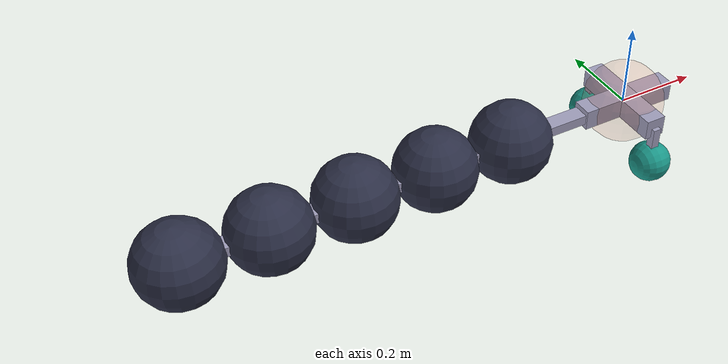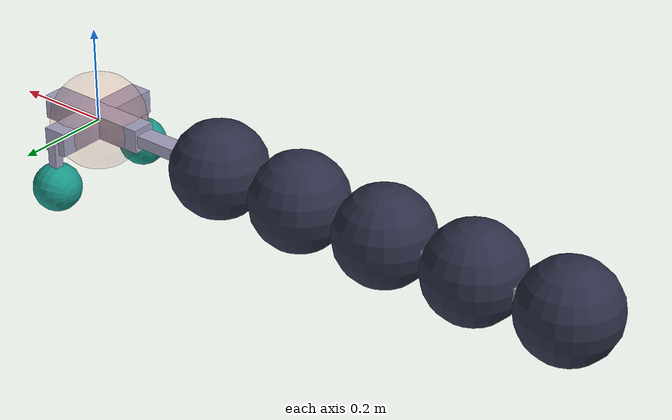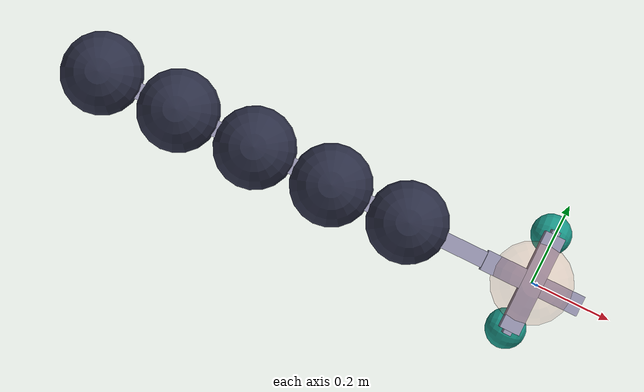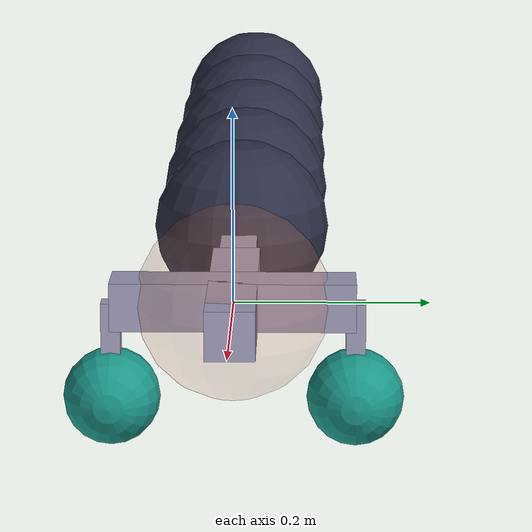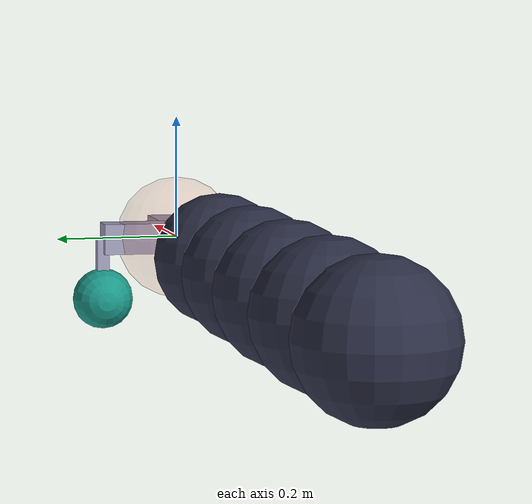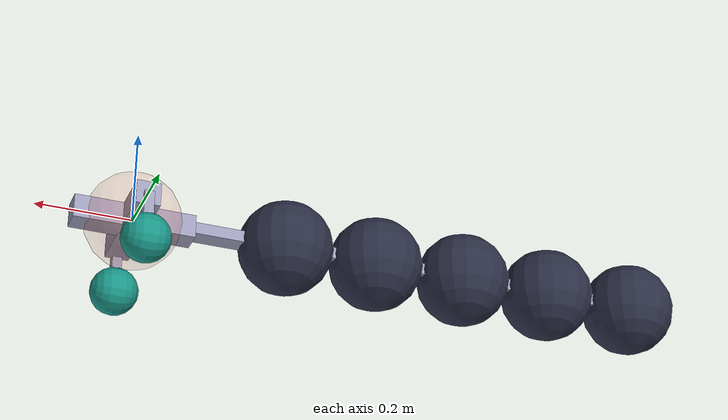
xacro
<?xml version="1.0"?>
<robot xmlns:xacro="http://www.ros.org/wiki/xacro" name="crawler">

  <!--
        To generate the correct .URDF from this XACRO file see https://answers.ros.org/question/10401/how-to-convert-xacro-file-to-urdf-file/
  -->

  <!--CONSTANTS-->
  <xacro:property name="PI" value="3.14159" />

  <xacro:property name="BODY_LENGTH" value="1"/>
  <xacro:property name="BODY_MASS" value="1"/>

  <!-- NOTE: The numbers of spine segments, for now, must be matched manually to the number of macro called to add the spine segments-->
  <xacro:property name="SPINE_SEGMENTS_NUMBER" value="5" />

  <xacro:property name="SPINE_SEGMENT_LENGTH" value="${BODY_LENGTH/SPINE_SEGMENTS_NUMBER}" />
  <xacro:property name="SPINE_DORSAL_BENDING_LIMIT" value="${PI/8}" />
  <xacro:property name="SPINE_LATERAL_BENDING_LIMIT" value="${PI/4}" />

  <xacro:property name="BODY_SPHERE_MASS" value="${BODY_MASS/(SPINE_SEGMENTS_NUMBER+3)}" /><!-- +3 for the head and girdle masses-->
  <xacro:property name="BODY_SPHERE_RADIUS" value="${BODY_LENGTH/10}" />
  <xacro:property name="BODY_SPHERE_INERTIA" value="${2*BODY_SPHERE_MASS*BODY_SPHERE_RADIUS*BODY_SPHERE_RADIUS/5}" />

  <xacro:property name="GIRDLE_WIDTH" value="${BODY_LENGTH/8}" />
  <xacro:property name="GIRDLE_LENGTH" value="${BODY_LENGTH/8}" />

  <xacro:property name="LEG_LENGTH" value="${BODY_LENGTH/10}" />
  <xacro:property name="LEG_TIP_MASS" value="${BODY_MASS/20}" />
  <xacro:property name="LEG_TIP_RADIUS" value="${BODY_LENGTH/20}" />
  <xacro:property name="LEG_TIP_INERTIA" value="${2*LEG_TIP_MASS*LEG_TIP_RADIUS*LEG_TIP_RADIUS/5}" />

  <xacro:property name="GIRDLE_FLEXION_LIMIT" value="${PI/2}" />
  <xacro:property name="GIRDLE_EXTENSION_LIMIT" value="${PI/6}" />

  <xacro:property name="GIRDLE_ABDUCTION_LIMIT" value="${PI/2}" />
  <xacro:property name="GIRDLE_ADDUCTION_LIMIT" value="${PI/2}" />

  <xacro:property name="JOINT_DAMPING" value="0.01" />
  <xacro:property name="JOINT_FRICTION" value="0.01" />

  <xacro:property name="VISUAL_BOX_RATIO" value="0.2" />

<!--########### COLORS used for the links ###########-->
<!--colors are currently implemented as macro because just defining them, as shown in the ROS tutorial, seems not to work-->
  <xacro:macro name="girdle_material">
    <material name="girdle_material">
      <color rgba="0.878 0.471 0.333 0.1"/>
    </material>
  </xacro:macro>

  <xacro:macro name="body_material">
    <material name="body_material">
      <color rgba="0.176 0.188 0.278 1.0"/>
    </material>
  </xacro:macro>

  <xacro:macro name="leg_material">
    <material name="leg_material">
      <color rgba="0.106 0.6 0.545 1.0"/>
    </material>
  </xacro:macro>

  <xacro:macro name="visual_box_material">
    <material name="visual_box_material">
      <color rgba="0.627 0.620 0.733 1.0"/>
    </material>
  </xacro:macro>

<!--########### MACRO for links and joints ###########-->

  <xacro:macro name="spine_segment_macro" params="N">
    <link name="spine_connection_${N}">
      <inertial>
      <origin xyz="0 0 0" rpy="0 0 0"/>
        <mass value="${BODY_SPHERE_MASS/100}"/>
        <inertia ixx="${BODY_SPHERE_INERTIA/100}"  ixy="0"  ixz="0" iyy="${BODY_SPHERE_INERTIA/100}" iyz="0" izz="${BODY_SPHERE_INERTIA/100}" />
      </inertial>
    </link>
    <link name="spine_link_${N}">
      <inertial>
      <origin xyz="${-SPINE_SEGMENT_LENGTH} 0 0" rpy="0 0 0"/>
        <mass value="${BODY_SPHERE_MASS}"/>
        <inertia ixx="${BODY_SPHERE_INERTIA}"  ixy="0"  ixz="0" iyy="${BODY_SPHERE_INERTIA}" iyz="0" izz="${BODY_SPHERE_INERTIA}" />
      </inertial>
      <visual>
        <origin xyz="${-SPINE_SEGMENT_LENGTH} 0 0" rpy="0 0 0"/>
        <geometry>
          <sphere radius="${BODY_SPHERE_RADIUS}" />
        </geometry>
        <xacro:body_material/>
      </visual>
      <visual>
        <origin xyz="${-SPINE_SEGMENT_LENGTH/2} 0 0" rpy="0 0 0"/>
        <geometry>
          <box size="${SPINE_SEGMENT_LENGTH} ${VISUAL_BOX_RATIO*SPINE_SEGMENT_LENGTH} ${VISUAL_BOX_RATIO*GIRDLE_WIDTH}"/>
        </geometry>
        <xacro:visual_box_material/>
      </visual>
      <collision>
        <origin xyz="${-SPINE_SEGMENT_LENGTH} 0 0" rpy="0 0 0"/>
        <geometry>
          <sphere radius="${BODY_SPHERE_RADIUS}" />
        </geometry>
      </collision>
    </link>
    <joint name="spine_dorsal_joint_${N}" type="revolute">
      <origin xyz="${-SPINE_SEGMENT_LENGTH} 0 0" rpy="${-PI/2} 0 0"/>
      <axis xyz="0 0 1"/>
      <parent link="spine_link_${N-1}"/>
      <child link="spine_connection_${N}"/>
      <dynamics damping="${JOINT_DAMPING}" friction="${JOINT_FRICTION}"/>
      <limit effort="30" velocity="1.0" lower="-${SPINE_DORSAL_BENDING_LIMIT}" upper="${SPINE_DORSAL_BENDING_LIMIT}" />
    </joint>
    <joint name="spine_lateral_joint_${N}" type="revolute">
      <origin xyz="0 0 0" rpy="${PI/2} 0 0"/>
      <axis xyz="0 0 1"/>
      <parent link="spine_connection_${N}"/>
      <child link="spine_link_${N}"/>
      <dynamics damping="${JOINT_DAMPING}" friction="${JOINT_FRICTION}"/>
      <limit effort="30" velocity="1.0" lower="-${SPINE_LATERAL_BENDING_LIMIT}" upper="${SPINE_LATERAL_BENDING_LIMIT}" />
    </joint>
  </xacro:macro>

  <xacro:macro name="leg_macro" params="prefix reflect">
    <link name="${prefix}_girdle_connection_1">
      <inertial>
        <origin xyz="0 0 0" rpy="0 0 0"/>
        <mass value="0.01"/>
        <inertia ixx="0.001"  ixy="0"  ixz="0" iyy="0.001" iyz="0" izz="0.001" />
      </inertial>
    </link>
    <joint name="${prefix}_girdle_flection_joint" type="revolute">
      <origin xyz="0 ${-reflect*GIRDLE_WIDTH} 0" rpy="0 ${PI/2} ${-reflect*PI/2}"/>
      <axis xyz="0 0 1"/>
      <parent link="girdle"/>
      <child link="${prefix}_girdle_connection_1"/>
      <dynamics damping="${JOINT_DAMPING}" friction="${JOINT_FRICTION}"/>
      <limit effort="30" velocity="1.0" lower="-${GIRDLE_EXTENSION_LIMIT}" upper="${GIRDLE_FLEXION_LIMIT}" />
    </joint>
    <link name="${prefix}_leg">
      <inertial>
      <origin xyz="${LEG_LENGTH} 0 0" rpy="0 0 0"/>
        <mass value="${LEG_TIP_MASS}"/>
        <inertia ixx="${LEG_TIP_INERTIA}"  ixy="0"  ixz="0" iyy="${LEG_TIP_INERTIA}" iyz="0" izz="${LEG_TIP_INERTIA}" />
      </inertial>
      <visual>
        <origin xyz="${LEG_LENGTH} 0 0" rpy="0 0 0"/>
        <geometry>
          <sphere radius="${LEG_TIP_RADIUS}" />
        </geometry>
        <xacro:leg_material/>
      </visual>
      <visual>
        <origin xyz="${LEG_LENGTH/2} 0 0" rpy="0 0 0"/>
        <geometry>
          <box size="${LEG_LENGTH} ${VISUAL_BOX_RATIO*LEG_LENGTH} ${VISUAL_BOX_RATIO*LEG_LENGTH}" />
        </geometry>
        <xacro:visual_box_material/>
      </visual>
      <collision>
        <origin xyz="${LEG_LENGTH} 0 0" rpy="0 0 0"/>
        <geometry>
          <sphere radius="${LEG_TIP_RADIUS}" />
        </geometry>
      </collision>
    </link>
    <joint name="${prefix}_girdle_abduction_joint" type="revolute">
      <origin xyz="0 0 0" rpy="${reflect*PI/2} 0 0"/>
      <axis xyz="0 0 1"/>
      <parent link="${prefix}_girdle_connection_1"/>
      <child link="${prefix}_leg"/>
      <dynamics damping="${JOINT_DAMPING}" friction="${JOINT_FRICTION}"/>
      <limit effort="30" velocity="1.0" lower="-${GIRDLE_ADDUCTION_LIMIT}" upper="${GIRDLE_ABDUCTION_LIMIT}" />
    </joint>
  </xacro:macro>

<!-- ########### MODEL LINKS AND JOINTS ########### -->
  <link name="girdle">
   <inertial>
     <origin xyz="0 0 0" rpy="0 0 0"/>
     <mass value="${BODY_SPHERE_MASS}"/>
     <inertia ixx="${BODY_SPHERE_INERTIA}"  ixy="0"  ixz="0" iyy="${BODY_SPHERE_INERTIA}" iyz="0" izz="${BODY_SPHERE_INERTIA}" />
   </inertial>
   <visual>
     <origin xyz="0 0 0" rpy="0 0 0"/>
     <geometry>
       <sphere radius="${BODY_SPHERE_RADIUS}" />
     </geometry>
     <xacro:girdle_material/>
   </visual>
   <visual>
     <origin xyz="0 0 0" rpy="0 0 0"/>
     <geometry>
       <box size="${VISUAL_BOX_RATIO*2*GIRDLE_WIDTH} ${2*GIRDLE_WIDTH} ${VISUAL_BOX_RATIO*2*GIRDLE_WIDTH}"/>
     </geometry>
     <xacro:visual_box_material/>
   </visual>
   <visual>
     <origin xyz="0 0 0" rpy="0 0 0"/>
     <geometry>
       <box size="${2*GIRDLE_LENGTH} ${VISUAL_BOX_RATIO*2*GIRDLE_LENGTH} ${VISUAL_BOX_RATIO*2*GIRDLE_WIDTH}"/>
     </geometry>
     <xacro:visual_box_material/>
   </visual>
   <collision>
     <origin xyz="0 0 0" rpy="0 0 0"/>
     <geometry>
       <sphere radius="${BODY_SPHERE_RADIUS}" />
     </geometry>
   </collision>
 </link>

  <link name="spine_connection_1">
      <inertial>
      <origin xyz="0 0 0" rpy="0 0 0"/>
        <mass value="${BODY_SPHERE_MASS/100}"/>
        <inertia ixx="${BODY_SPHERE_INERTIA/100}"  ixy="0"  ixz="0" iyy="${BODY_SPHERE_INERTIA/100}" iyz="0" izz="${BODY_SPHERE_INERTIA/100}" />
      </inertial>
    </link>
    <link name="spine_link_1">
      <inertial>
      <origin xyz="${-SPINE_SEGMENT_LENGTH} 0 0" rpy="0 0 0"/>
        <mass value="${BODY_SPHERE_MASS}"/>
        <inertia ixx="${BODY_SPHERE_INERTIA}"  ixy="0"  ixz="0" iyy="${BODY_SPHERE_INERTIA}" iyz="0" izz="${BODY_SPHERE_INERTIA}" />
      </inertial>
      <visual>
        <origin xyz="${-SPINE_SEGMENT_LENGTH} 0 0" rpy="0 0 0"/>
        <geometry>
          <sphere radius="${BODY_SPHERE_RADIUS}" />
        </geometry>
        <xacro:body_material/>
      </visual>
      <visual>
        <origin xyz="${-SPINE_SEGMENT_LENGTH/2} 0 0" rpy="0 0 0"/>
        <geometry>
          <box size="${SPINE_SEGMENT_LENGTH} ${VISUAL_BOX_RATIO*SPINE_SEGMENT_LENGTH} ${VISUAL_BOX_RATIO*GIRDLE_WIDTH}"/>
        </geometry>
        <xacro:visual_box_material/>
      </visual>
      <collision>
        <origin xyz="${-SPINE_SEGMENT_LENGTH} 0 0" rpy="0 0 0"/>
        <geometry>
          <sphere radius="${BODY_SPHERE_RADIUS}" />
        </geometry>
      </collision>
    </link>
    <joint name="spine_dorsal_joint_1" type="revolute">
      <origin xyz="${-GIRDLE_LENGTH} 0 0" rpy="${-PI/2} 0 0"/>
      <axis xyz="0 0 1"/>
      <parent link="girdle"/>
      <child link="spine_connection_1"/>
      <dynamics damping="${JOINT_DAMPING}" friction="${JOINT_FRICTION}"/>
      <limit effort="30" velocity="1.0" lower="-${SPINE_DORSAL_BENDING_LIMIT}" upper="${SPINE_DORSAL_BENDING_LIMIT}" />
    </joint>
    <joint name="spine_lateral_joint_1" type="revolute">
      <origin xyz="0 0 0" rpy="${PI/2} 0 0"/>
      <axis xyz="0 0 1"/>
      <parent link="spine_connection_1"/>
      <child link="spine_link_1"/>
      <dynamics damping="${JOINT_DAMPING}" friction="${JOINT_FRICTION}"/>
      <limit effort="30" velocity="1.0" lower="-${SPINE_LATERAL_BENDING_LIMIT}" upper="${SPINE_LATERAL_BENDING_LIMIT}" />
    </joint>

  <xacro:spine_segment_macro N="2"/>
  <xacro:spine_segment_macro N="3"/>
  <xacro:spine_segment_macro N="4"/>
  <xacro:spine_segment_macro N="5"/>

  <xacro:leg_macro prefix="right" reflect="1"/>
  <xacro:leg_macro prefix="left" reflect="-1"/>

</robot>
